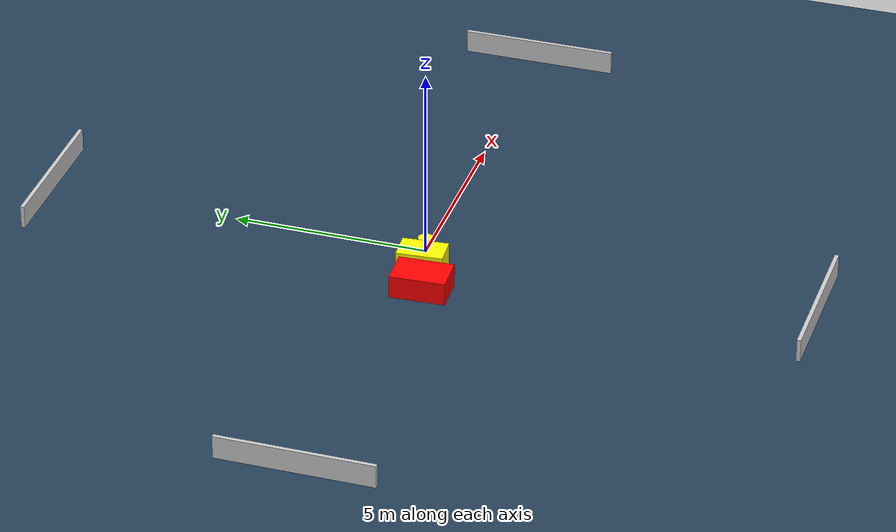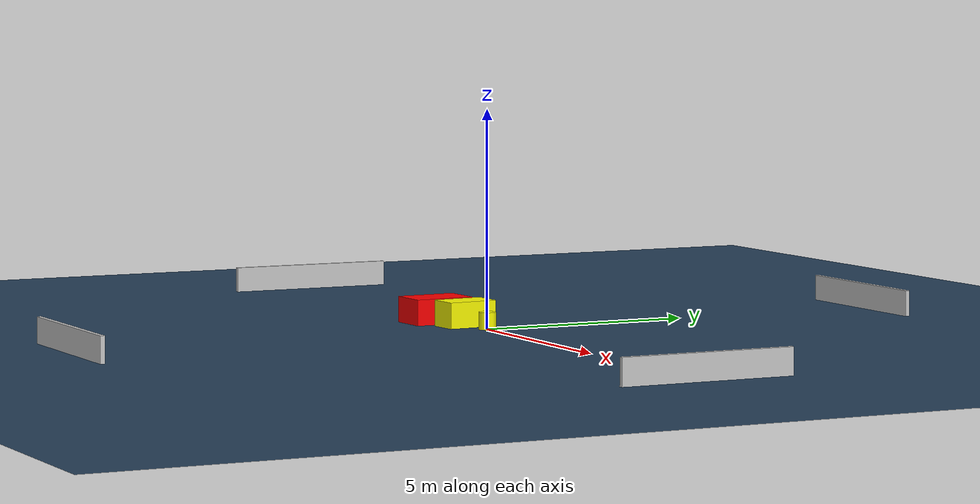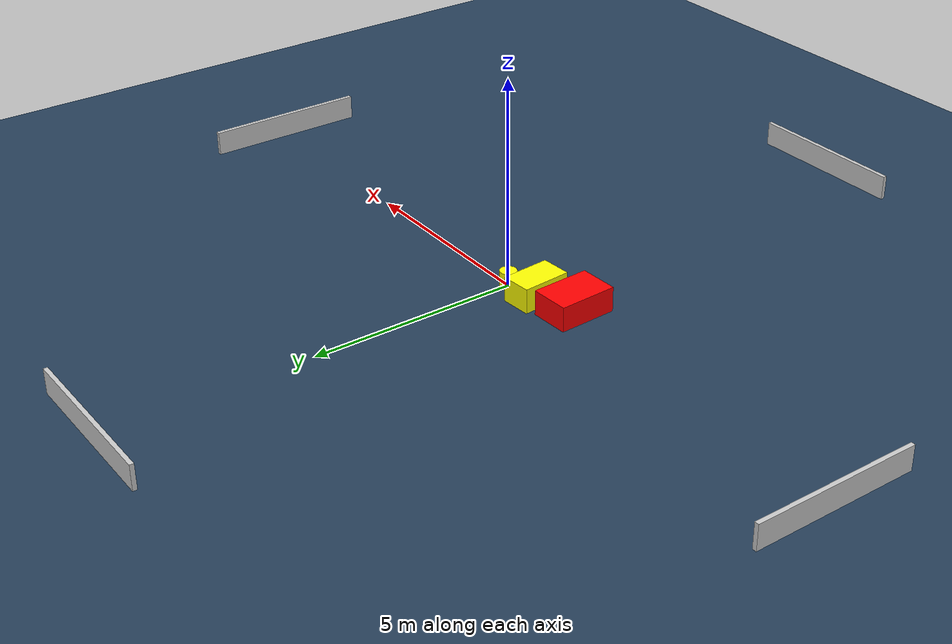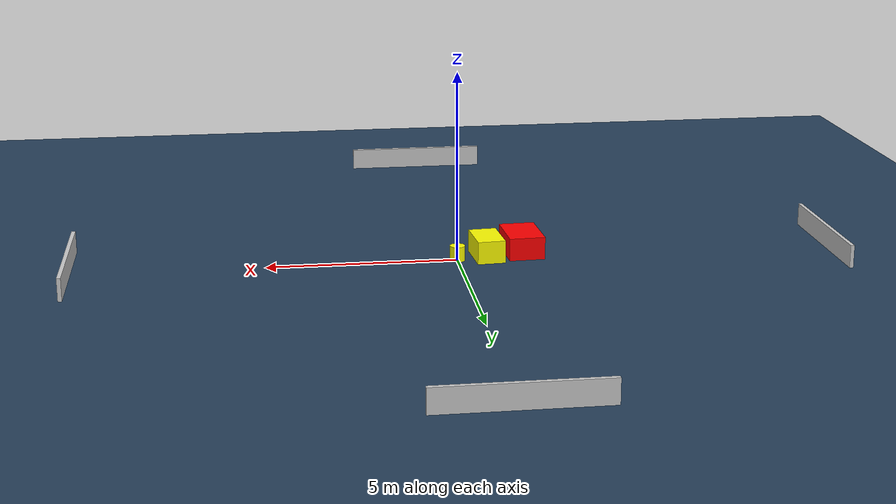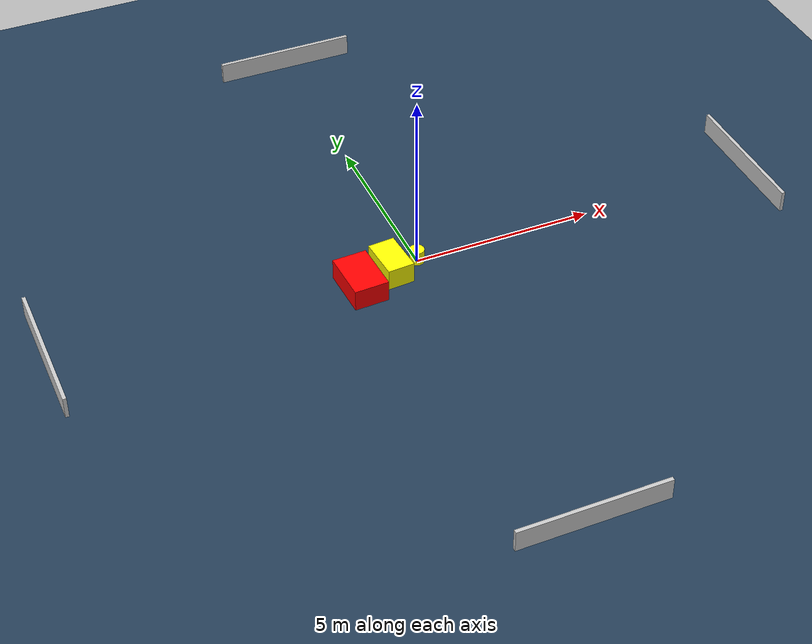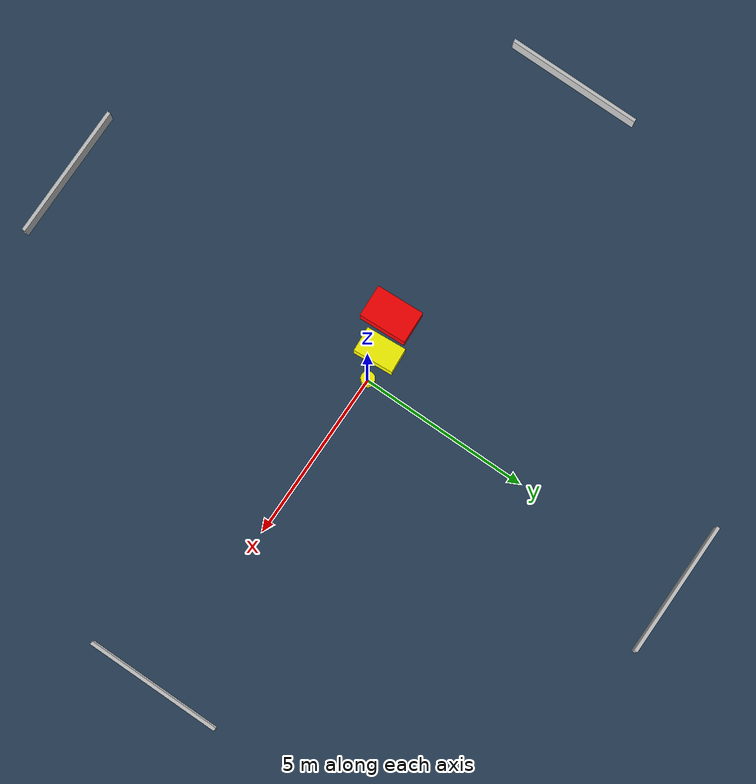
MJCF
<?xml version="1.0" ?>
<mujoco model="generated_environment">
  <option timestep="0.01" integrator="RK4" cone="elliptic"/>
  <default>
    <geom density="1"/>
  </default>
  <asset>
    <texture builtin="gradient" height="3072" name="skybox" rgb1="0.3 0.5 0.7" rgb2="0 0 0" type="skybox" width="512"/>
    <texture builtin="checker" height="300" name="groundplane" rgb1="0.2 0.3 0.4" rgb2="0.1 0.2 0.3" type="2d" width="300"/>
    <material name="groundplane" reflectance="0.2" texrepeat="5 5" texture="groundplane"/>
  </asset>
  <worldbody>
    <light dir="0 0 -1" directional="true" pos="0 0 1.5"/>
    <geom condim="3" friction="0.5 0.005 0.001" material="groundplane" name="floor" pos="0 0 0" size="0 0 0.05" type="plane"/>
    <body name="walls">
      <geom name="wall_1" condim="4" pos="-10.0 0.0 0.3" rgba="0.800000011920929 0.800000011920929 0.800000011920929 1.0" size="0.05 2.0 0.3" type="box"/>
      <geom name="wall_2" condim="4" pos="10.0 0.0 0.3" rgba="0.800000011920929 0.800000011920929 0.800000011920929 1.0" size="0.05 2.0 0.3" type="box"/>
      <geom name="wall_3" condim="4" pos="0.0 -10.0 0.3" rgba="0.800000011920929 0.800000011920929 0.800000011920929 1.0" size="2.0 0.05 0.3" type="box"/>
      <geom name="wall_4" condim="4" pos="0.0 10.0 0.3" rgba="0.800000011920929 0.800000011920929 0.800000011920929 1.0" size="2.0 0.05 0.3" type="box"/>
    </body>
    <body name="robot">
      <joint name="joint_x" type="slide" pos="0 0 0" axis="1 0 0"/>
      <joint name="joint_y" type="slide" pos="0 0 0" axis="0 1 0"/>
      <geom name="robot" type="cylinder" pos="0.0 0.0 0.2" size="0.2 0.2 0.0" mass="5.0" friction="1.0 0.005 0.0001" condim="4" rgba="1.0 1.0 0.0 1.0"/>
    </body>
    <body name="obstacle_1_movable">
      <geom name="obstacle_1_movable" condim="4" pos="-0.8022873739215741 -0.1642662627631788 0.3" euler="0 0 274.0735497282702" friction="0.0 0.005 0.001" rgba="1.0 1.0 0.0 1.0" size="0.5932150314673564 0.3682422518799159 0.3" type="box" mass="0.1"/>
      <joint type="free"/>
    </body>
    <body name="obstacle_2_static">
      <geom name="obstacle_2_static" condim="4" pos="-1.7848299527315339 -0.45740839213696505 0.3" euler="0 0 182.5345397398338" friction="0.0 0.005 0.001" rgba="1.0 0.0 0.0 1.0" size="0.4733558477494114 0.708511554755684 0.3" type="box"/>
    </body>
  </worldbody>
  <actuator>
    <motor name="actuator_x" joint="joint_x" gear="1" ctrlrange="-1 1"/>
    <motor name="actuator_y" joint="joint_y" gear="1" ctrlrange="-1 1"/>
  </actuator>
</mujoco>
